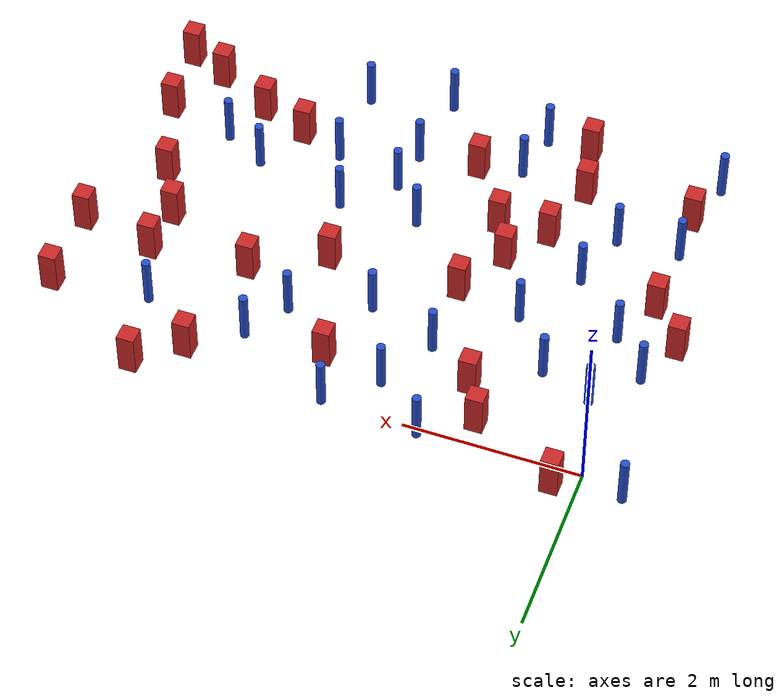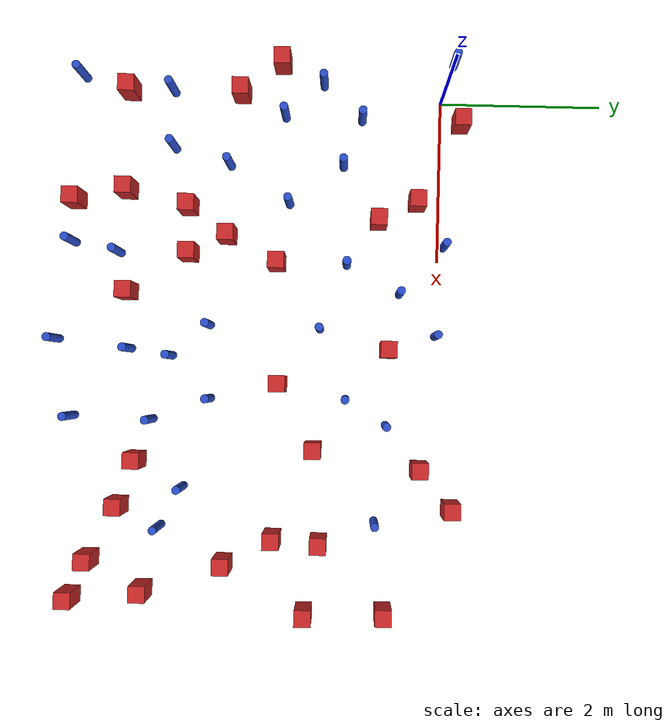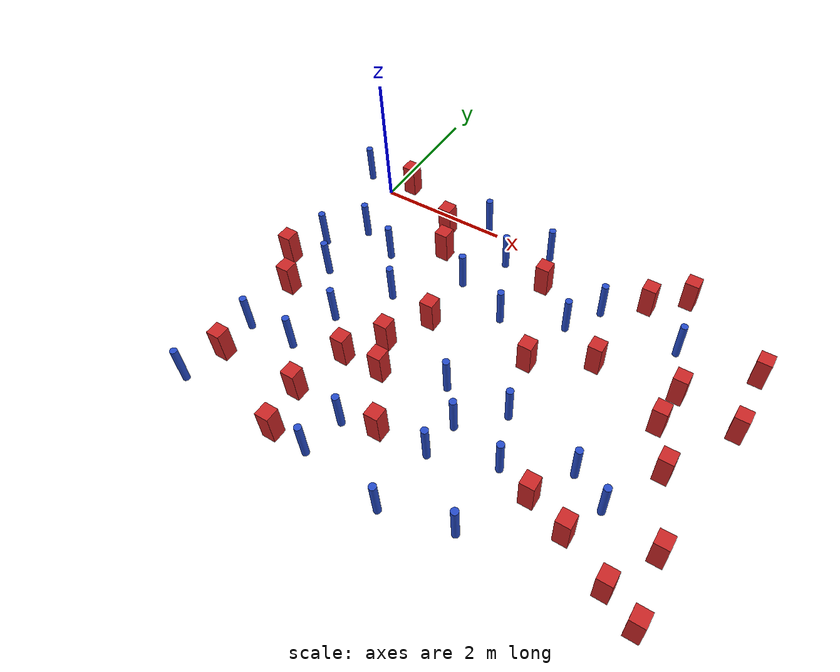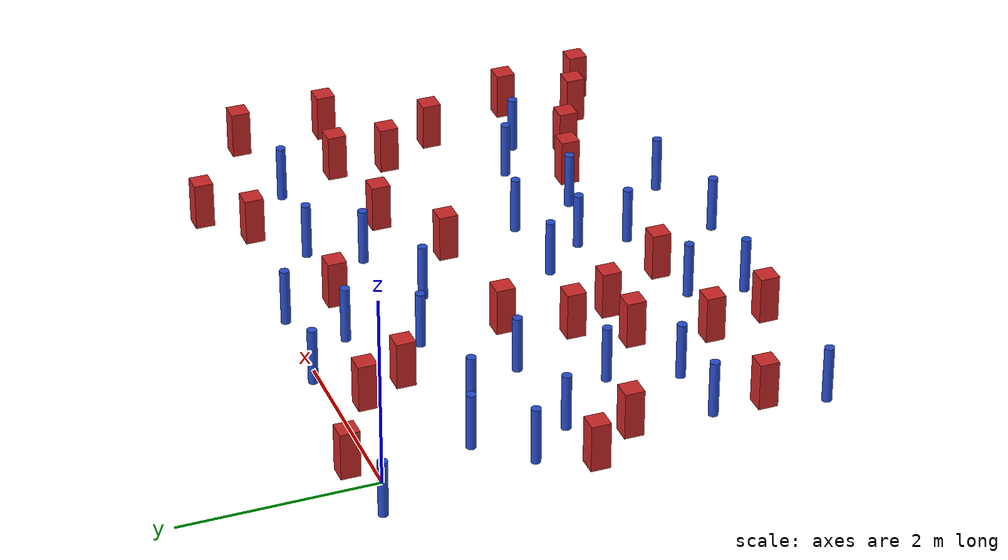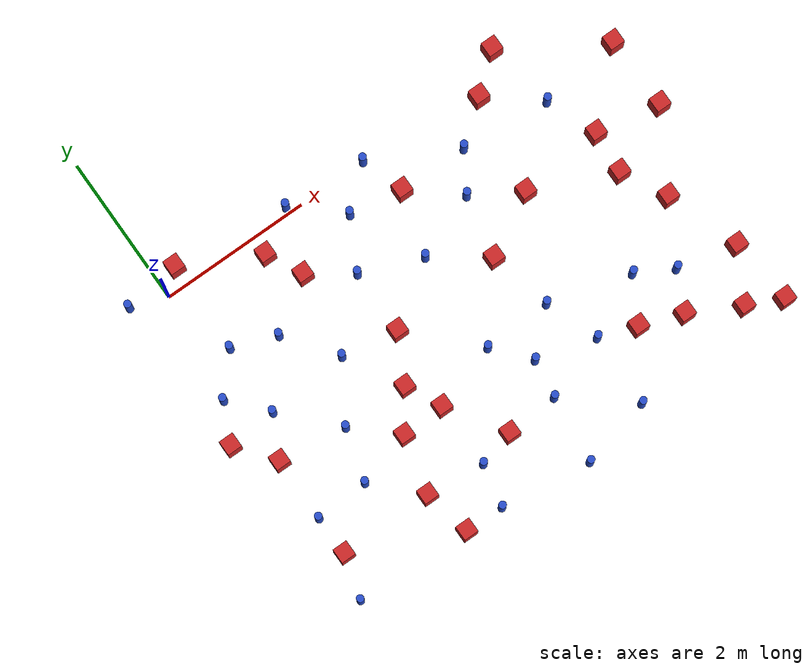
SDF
<sdf version="1.6">
 <model name="dense_52">
  <model name="square_post_obstacle5">
   <static>true</static>
   <pose>5.47471650672 -1.39341901515 8.22691968438e-08 7.2212513382e-06 -7.54495500217e-07 2.29674213826e-05</pose>
   <link name="link">
    <pose>0 0 0.25 0 -0 0</pose>
    <inertial>
     <mass>100</mass>
     <inertia>
      <ixx>0.166667</ixx>
      <ixy>0</ixy>
      <ixz>0</ixz>
      <iyy>0.166667</iyy>
      <iyz>0</iyz>
      <izz>0.166667</izz>
     </inertia>
    </inertial>
    <collision name="collision"><geometry><box><size>.2 .2 .5</size></box></geometry></collision>
    <visual name="visual">
     <geometry><box><size>.2 .2 .5</size></box></geometry>
     <material>
      <script><name>Gazebo/Red</name><uri>file://media/materials/scripts/gazebo.material</uri></script>
     </material>
    </visual>
   </link>
  </model>
  <model name="square_post_obstacle25">
   <static>true</static>
   <pose>6.18317833185 -4.40697033715 8.22691968438e-08 7.22125133819e-06 -7.54495500217e-07 2.29674213826e-05</pose>
   <link name="link">
    <pose>0 0 0.25 0 -0 0</pose>
    <inertial>
     <mass>100</mass>
     <inertia>
      <ixx>0.166667</ixx>
      <ixy>0</ixy>
      <ixz>0</ixz>
      <iyy>0.166667</iyy>
      <iyz>0</iyz>
      <izz>0.166667</izz>
     </inertia>
    </inertial>
    <collision name="collision"><geometry><box><size>.2 .2 .5</size></box></geometry></collision>
    <visual name="visual">
     <geometry><box><size>.2 .2 .5</size></box></geometry>
     <material>
      <script><name>Gazebo/Red</name><uri>file://media/materials/scripts/gazebo.material</uri></script>
     </material>
    </visual>
   </link>
  </model>
  <model name="pole_obstacle20">
   <static>true</static>
   <pose>3.99719522737 -4.45366541195 2.88873142074e-08 -9.90536690327e-09 4.60219948978e-07 -1.20965994969e-07</pose>
   <link name="link">
    <pose>0 0 0.3 0 -0 0</pose>
    <inertial>
     <mass>1</mass>
     <inertia><ixx>0.145833</ixx><ixy>0</ixy><ixz>0</ixz><iyy>0.145833</iyy><iyz>0</iyz><izz>0.125</izz></inertia>
    </inertial>
    <collision name="collision">
     <geometry><cylinder><radius>0.05</radius><length>.6</length></cylinder></geometry>
    </collision>
    <visual name="visual">
     <geometry><cylinder><radius>0.05</radius><length>.6</length></cylinder></geometry>
     <material>
      <script><name>Gazebo/Blue</name><uri>file://media/materials/scripts/gazebo.material</uri></script>
     </material>
    </visual>
   </link>
  </model>
  <model name="square_post_obstacle33">
   <static>true</static>
   <pose>1.38309810057 -3.08793547738 8.22691968438e-08 7.2212513382e-06 -7.54495500217e-07 2.29674213826e-05</pose>
   <link name="link">
    <pose>0 0 0.25 0 -0 0</pose>
    <inertial>
     <mass>100</mass>
     <inertia>
      <ixx>0.166667</ixx>
      <ixy>0</ixy>
      <ixz>0</ixz>
      <iyy>0.166667</iyy>
      <iyz>0</iyz>
      <izz>0.166667</izz>
     </inertia>
    </inertial>
    <collision name="collision"><geometry><box><size>.2 .2 .5</size></box></geometry></collision>
    <visual name="visual">
     <geometry><box><size>.2 .2 .5</size></box></geometry>
     <material>
      <script><name>Gazebo/Red</name><uri>file://media/materials/scripts/gazebo.material</uri></script>
     </material>
    </visual>
   </link>
  </model>
  <model name="square_post_obstacle34">
   <static>true</static>
   <pose>3.10798686411 -0.59308284486 8.22691968438e-08 7.2212513382e-06 -7.54495500217e-07 2.29674213826e-05</pose>
   <link name="link">
    <pose>0 0 0.25 0 -0 0</pose>
    <inertial>
     <mass>100</mass>
     <inertia>
      <ixx>0.166667</ixx>
      <ixy>0</ixy>
      <ixz>0</ixz>
      <iyy>0.166667</iyy>
      <iyz>0</iyz>
      <izz>0.166667</izz>
     </inertia>
    </inertial>
    <collision name="collision"><geometry><box><size>.2 .2 .5</size></box></geometry></collision>
    <visual name="visual">
     <geometry><box><size>.2 .2 .5</size></box></geometry>
     <material>
      <script><name>Gazebo/Red</name><uri>file://media/materials/scripts/gazebo.material</uri></script>
     </material>
    </visual>
   </link>
  </model>
  <model name="pole_obstacle32">
   <static>true</static>
   <pose>3.23208982439 -3.25956717688 2.88873142074e-08 -9.90536690232e-09 4.6021994898e-07 -1.20965994968e-07</pose>
   <link name="link">
    <pose>0 0 0.3 0 -0 0</pose>
    <inertial>
     <mass>1</mass>
     <inertia><ixx>0.145833</ixx><ixy>0</ixy><ixz>0</ixz><iyy>0.145833</iyy><iyz>0</iyz><izz>0.125</izz></inertia>
    </inertial>
    <collision name="collision">
     <geometry><cylinder><radius>0.05</radius><length>.6</length></cylinder></geometry>
    </collision>
    <visual name="visual">
     <geometry><cylinder><radius>0.05</radius><length>.6</length></cylinder></geometry>
     <material>
      <script><name>Gazebo/Blue</name><uri>file://media/materials/scripts/gazebo.material</uri></script>
     </material>
    </visual>
   </link>
  </model>
  <model name="pole_obstacle37">
   <static>true</static>
   <pose>5.31489590078 -3.34119083142 2.88873142074e-08 -9.90536690245e-09 4.6021994898e-07 -1.20965994966e-07</pose>
   <link name="link">
    <pose>0 0 0.3 0 -0 0</pose>
    <inertial>
     <mass>1</mass>
     <inertia><ixx>0.145833</ixx><ixy>0</ixy><ixz>0</ixz><iyy>0.145833</iyy><iyz>0</iyz><izz>0.125</izz></inertia>
    </inertial>
    <collision name="collision">
     <geometry><cylinder><radius>0.05</radius><length>.6</length></cylinder></geometry>
    </collision>
    <visual name="visual">
     <geometry><cylinder><radius>0.05</radius><length>.6</length></cylinder></geometry>
     <material>
      <script><name>Gazebo/Blue</name><uri>file://media/materials/scripts/gazebo.material</uri></script>
     </material>
    </visual>
   </link>
  </model>
  <model name="pole_obstacle39">
   <static>true</static>
   <pose>3.05622703414 -4.67441624264 2.88873142074e-08 -9.90536689859e-09 4.60219948989e-07 -1.20965994961e-07</pose>
   <link name="link">
    <pose>0 0 0.3 0 -0 0</pose>
    <inertial>
     <mass>1</mass>
     <inertia><ixx>0.145833</ixx><ixy>0</ixy><ixz>0</ixz><iyy>0.145833</iyy><iyz>0</iyz><izz>0.125</izz></inertia>
    </inertial>
    <collision name="collision">
     <geometry><cylinder><radius>0.05</radius><length>.6</length></cylinder></geometry>
    </collision>
    <visual name="visual">
     <geometry><cylinder><radius>0.05</radius><length>.6</length></cylinder></geometry>
     <material>
      <script><name>Gazebo/Blue</name><uri>file://media/materials/scripts/gazebo.material</uri></script>
     </material>
    </visual>
   </link>
  </model>
  <model name="square_post_obstacle40">
   <static>true</static>
   <pose>0.27143165079 0.245713718609 8.22691968438e-08 7.2212513382e-06 -7.54495500217e-07 2.29674213826e-05</pose>
   <link name="link">
    <pose>0 0 0.25 0 -0 0</pose>
    <inertial>
     <mass>100</mass>
     <inertia>
      <ixx>0.166667</ixx>
      <ixy>0</ixy>
      <ixz>0</ixz>
      <iyy>0.166667</iyy>
      <iyz>0</iyz>
      <izz>0.166667</izz>
     </inertia>
    </inertial>
    <collision name="collision"><geometry><box><size>.2 .2 .5</size></box></geometry></collision>
    <visual name="visual">
     <geometry><box><size>.2 .2 .5</size></box></geometry>
     <material>
      <script><name>Gazebo/Red</name><uri>file://media/materials/scripts/gazebo.material</uri></script>
     </material>
    </visual>
   </link>
  </model>
  <model name="pole_obstacle45">
   <static>true</static>
   <pose>1.85048243267 -4.50542198533 2.88873142074e-08 -9.90536689852e-09 4.60219948989e-07 -1.2096599496e-07</pose>
   <link name="link">
    <pose>0 0 0.3 0 -0 0</pose>
    <inertial>
     <mass>1</mass>
     <inertia><ixx>0.145833</ixx><ixy>0</ixy><ixz>0</ixz><iyy>0.145833</iyy><iyz>0</iyz><izz>0.125</izz></inertia>
    </inertial>
    <collision name="collision">
     <geometry><cylinder><radius>0.05</radius><length>.6</length></cylinder></geometry>
    </collision>
    <visual name="visual">
     <geometry><cylinder><radius>0.05</radius><length>.6</length></cylinder></geometry>
     <material>
      <script><name>Gazebo/Blue</name><uri>file://media/materials/scripts/gazebo.material</uri></script>
     </material>
    </visual>
   </link>
  </model>
  <model name="pole_obstacle46">
   <static>true</static>
   <pose>4.03366678847 -0.60470468191 2.88873142074e-08 -9.90536689398e-09 4.60219949e-07 -1.20965994956e-07</pose>
   <link name="link">
    <pose>0 0 0.3 0 -0 0</pose>
    <inertial>
     <mass>1</mass>
     <inertia><ixx>0.145833</ixx><ixy>0</ixy><ixz>0</ixz><iyy>0.145833</iyy><iyz>0</iyz><izz>0.125</izz></inertia>
    </inertial>
    <collision name="collision">
     <geometry><cylinder><radius>0.05</radius><length>.6</length></cylinder></geometry>
    </collision>
    <visual name="visual">
     <geometry><cylinder><radius>0.05</radius><length>.6</length></cylinder></geometry>
     <material>
      <script><name>Gazebo/Blue</name><uri>file://media/materials/scripts/gazebo.material</uri></script>
     </material>
    </visual>
   </link>
  </model>
  <model name="pole_obstacle59">
   <static>true</static>
   <pose>2.92207473677 -0.0161002207971 2.88873142074e-08 -9.90536689355e-09 4.60219949001e-07 -1.20965994954e-07</pose>
   <link name="link">
    <pose>0 0 0.3 0 -0 0</pose>
    <inertial>
     <mass>1</mass>
     <inertia><ixx>0.145833</ixx><ixy>0</ixy><ixz>0</ixz><iyy>0.145833</iyy><iyz>0</iyz><izz>0.125</izz></inertia>
    </inertial>
    <collision name="collision">
     <geometry><cylinder><radius>0.05</radius><length>.6</length></cylinder></geometry>
    </collision>
    <visual name="visual">
     <geometry><cylinder><radius>0.05</radius><length>.6</length></cylinder></geometry>
     <material>
      <script><name>Gazebo/Blue</name><uri>file://media/materials/scripts/gazebo.material</uri></script>
     </material>
    </visual>
   </link>
  </model>
  <model name="pole_obstacle66">
   <static>true</static>
   <pose>5.2132037423 -0.721027584315 2.88873142074e-08 -9.90536689837e-09 4.60219948989e-07 -1.2096599496e-07</pose>
   <link name="link">
    <pose>0 0 0.3 0 -0 0</pose>
    <inertial>
     <mass>1</mass>
     <inertia><ixx>0.145833</ixx><ixy>0</ixy><ixz>0</ixz><iyy>0.145833</iyy><iyz>0</iyz><izz>0.125</izz></inertia>
    </inertial>
    <collision name="collision">
     <geometry><cylinder><radius>0.05</radius><length>.6</length></cylinder></geometry>
    </collision>
    <visual name="visual">
     <geometry><cylinder><radius>0.05</radius><length>.6</length></cylinder></geometry>
     <material>
      <script><name>Gazebo/Blue</name><uri>file://media/materials/scripts/gazebo.material</uri></script>
     </material>
    </visual>
   </link>
  </model>
  <model name="square_post_obstacle69">
   <static>true</static>
   <pose>-0.0511654074525 -2.46885445732 8.22691968438e-08 7.2212513382e-06 -7.54495500217e-07 2.29674213826e-05</pose>
   <link name="link">
    <pose>0 0 0.25 0 -0 0</pose>
    <inertial>
     <mass>100</mass>
     <inertia>
      <ixx>0.166667</ixx>
      <ixy>0</ixy>
      <ixz>0</ixz>
      <iyy>0.166667</iyy>
      <iyz>0</iyz>
      <izz>0.166667</izz>
     </inertia>
    </inertial>
    <collision name="collision"><geometry><box><size>.2 .2 .5</size></box></geometry></collision>
    <visual name="visual">
     <geometry><box><size>.2 .2 .5</size></box></geometry>
     <material>
      <script><name>Gazebo/Red</name><uri>file://media/materials/scripts/gazebo.material</uri></script>
     </material>
    </visual>
   </link>
  </model>
  <model name="square_post_obstacle72">
   <static>true</static>
   <pose>5.72340091215 -4.19345197059 8.22691968438e-08 7.2212513382e-06 -7.54495500217e-07 2.29674213826e-05</pose>
   <link name="link">
    <pose>0 0 0.25 0 -0 0</pose>
    <inertial>
     <mass>100</mass>
     <inertia>
      <ixx>0.166667</ixx>
      <ixy>0</ixy>
      <ixz>0</ixz>
      <iyy>0.166667</iyy>
      <iyz>0</iyz>
      <izz>0.166667</izz>
     </inertia>
    </inertial>
    <collision name="collision"><geometry><box><size>.2 .2 .5</size></box></geometry></collision>
    <visual name="visual">
     <geometry><box><size>.2 .2 .5</size></box></geometry>
     <material>
      <script><name>Gazebo/Red</name><uri>file://media/materials/scripts/gazebo.material</uri></script>
     </material>
    </visual>
   </link>
  </model>
  <model name="pole_obstacle88">
   <static>true</static>
   <pose>0.648081252535 -3.28849379341 2.88873142074e-08 -9.90536689636e-09 4.60219948994e-07 -1.20965994958e-07</pose>
   <link name="link">
    <pose>0 0 0.3 0 -0 0</pose>
    <inertial>
     <mass>1</mass>
     <inertia><ixx>0.145833</ixx><ixy>0</ixy><ixz>0</ixz><iyy>0.145833</iyy><iyz>0</iyz><izz>0.125</izz></inertia>
    </inertial>
    <collision name="collision">
     <geometry><cylinder><radius>0.05</radius><length>.6</length></cylinder></geometry>
    </collision>
    <visual name="visual">
     <geometry><cylinder><radius>0.05</radius><length>.6</length></cylinder></geometry>
     <material>
      <script><name>Gazebo/Blue</name><uri>file://media/materials/scripts/gazebo.material</uri></script>
     </material>
    </visual>
   </link>
  </model>
  <model name="pole_obstacle89">
   <static>true</static>
   <pose>1.31473457447 -1.85137507833 2.88873142074e-08 -9.90536689672e-09 4.60219948993e-07 -1.20965994959e-07</pose>
   <link name="link">
    <pose>0 0 0.3 0 -0 0</pose>
    <inertial>
     <mass>1</mass>
     <inertia><ixx>0.145833</ixx><ixy>0</ixy><ixz>0</ixz><iyy>0.145833</iyy><iyz>0</iyz><izz>0.125</izz></inertia>
    </inertial>
    <collision name="collision">
     <geometry><cylinder><radius>0.05</radius><length>.6</length></cylinder></geometry>
    </collision>
    <visual name="visual">
     <geometry><cylinder><radius>0.05</radius><length>.6</length></cylinder></geometry>
     <material>
      <script><name>Gazebo/Blue</name><uri>file://media/materials/scripts/gazebo.material</uri></script>
     </material>
    </visual>
   </link>
  </model>
  <model name="pole_obstacle94">
   <static>true</static>
   <pose>3.72324024829 -1.10595730925 2.88873142074e-08 -9.90536689395e-09 4.60219949e-07 -1.20965994953e-07</pose>
   <link name="link">
    <pose>0 0 0.3 0 -0 0</pose>
    <inertial>
     <mass>1</mass>
     <inertia><ixx>0.145833</ixx><ixy>0</ixy><ixz>0</ixz><iyy>0.145833</iyy><iyz>0</iyz><izz>0.125</izz></inertia>
    </inertial>
    <collision name="collision">
     <geometry><cylinder><radius>0.05</radius><length>.6</length></cylinder></geometry>
    </collision>
    <visual name="visual">
     <geometry><cylinder><radius>0.05</radius><length>.6</length></cylinder></geometry>
     <material>
      <script><name>Gazebo/Blue</name><uri>file://media/materials/scripts/gazebo.material</uri></script>
     </material>
    </visual>
   </link>
  </model>
  <model name="pole_obstacle102">
   <static>true</static>
   <pose>2.40864202936 -0.466792761881 2.88873142074e-08 -9.90536689634e-09 4.60219948994e-07 -1.20965994958e-07</pose>
   <link name="link">
    <pose>0 0 0.3 0 -0 0</pose>
    <inertial>
     <mass>1</mass>
     <inertia><ixx>0.145833</ixx><ixy>0</ixy><ixz>0</ixz><iyy>0.145833</iyy><iyz>0</iyz><izz>0.125</izz></inertia>
    </inertial>
    <collision name="collision">
     <geometry><cylinder><radius>0.05</radius><length>.6</length></cylinder></geometry>
    </collision>
    <visual name="visual">
     <geometry><cylinder><radius>0.05</radius><length>.6</length></cylinder></geometry>
     <material>
      <script><name>Gazebo/Blue</name><uri>file://media/materials/scripts/gazebo.material</uri></script>
     </material>
    </visual>
   </link>
  </model>
  <model name="pole_obstacle103">
   <static>true</static>
   <pose>-0.22448012162 -4.43620303594 2.88873142074e-08 -9.90536689703e-09 4.60219948992e-07 -1.20965994959e-07</pose>
   <link name="link">
    <pose>0 0 0.3 0 -0 0</pose>
    <inertial>
     <mass>1</mass>
     <inertia><ixx>0.145833</ixx><ixy>0</ixy><ixz>0</ixz><iyy>0.145833</iyy><iyz>0</iyz><izz>0.125</izz></inertia>
    </inertial>
    <collision name="collision">
     <geometry><cylinder><radius>0.05</radius><length>.6</length></cylinder></geometry>
    </collision>
    <visual name="visual">
     <geometry><cylinder><radius>0.05</radius><length>.6</length></cylinder></geometry>
     <material>
      <script><name>Gazebo/Blue</name><uri>file://media/materials/scripts/gazebo.material</uri></script>
     </material>
    </visual>
   </link>
  </model>
  <model name="pole_obstacle104">
   <static>true</static>
   <pose>0.222646440576 -1.92469986445 2.88873142074e-08 -9.90536690118e-09 4.60219948983e-07 -1.20965994965e-07</pose>
   <link name="link">
    <pose>0 0 0.3 0 -0 0</pose>
    <inertial>
     <mass>1</mass>
     <inertia><ixx>0.145833</ixx><ixy>0</ixy><ixz>0</ixz><iyy>0.145833</iyy><iyz>0</iyz><izz>0.125</izz></inertia>
    </inertial>
    <collision name="collision">
     <geometry><cylinder><radius>0.05</radius><length>.6</length></cylinder></geometry>
    </collision>
    <visual name="visual">
     <geometry><cylinder><radius>0.05</radius><length>.6</length></cylinder></geometry>
     <material>
      <script><name>Gazebo/Blue</name><uri>file://media/materials/scripts/gazebo.material</uri></script>
     </material>
    </visual>
   </link>
  </model>
  <model name="square_post_obstacle95">
   <static>true</static>
   <pose>-0.055517162418 -3.85417466073 8.22691968438e-08 7.2212513382e-06 -7.54495500217e-07 2.29674213826e-05</pose>
   <link name="link">
    <pose>0 0 0.25 0 -0 0</pose>
    <inertial>
     <mass>100</mass>
     <inertia>
      <ixx>0.166667</ixx>
      <ixy>0</ixy>
      <ixz>0</ixz>
      <iyy>0.166667</iyy>
      <iyz>0</iyz>
      <izz>0.166667</izz>
     </inertia>
    </inertial>
    <collision name="collision"><geometry><box><size>.2 .2 .5</size></box></geometry></collision>
    <visual name="visual">
     <geometry><box><size>.2 .2 .5</size></box></geometry>
     <material>
      <script><name>Gazebo/Red</name><uri>file://media/materials/scripts/gazebo.material</uri></script>
     </material>
    </visual>
   </link>
  </model>
  <model name="pole_obstacle108">
   <static>true</static>
   <pose>-0.0636278913677 -3.31950558026 2.88873142074e-08 -9.90536689778e-09 4.60219948991e-07 -1.20965994959e-07</pose>
   <link name="link">
    <pose>0 0 0.3 0 -0 0</pose>
    <inertial>
     <mass>1</mass>
     <inertia><ixx>0.145833</ixx><ixy>0</ixy><ixz>0</ixz><iyy>0.145833</iyy><iyz>0</iyz><izz>0.125</izz></inertia>
    </inertial>
    <collision name="collision">
     <geometry><cylinder><radius>0.05</radius><length>.6</length></cylinder></geometry>
    </collision>
    <visual name="visual">
     <geometry><cylinder><radius>0.05</radius><length>.6</length></cylinder></geometry>
     <material>
      <script><name>Gazebo/Blue</name><uri>file://media/materials/scripts/gazebo.material</uri></script>
     </material>
    </visual>
   </link>
  </model>
  <model name="pole_obstacle110">
   <static>true</static>
   <pose>0.245453239597 -0.973071662758 2.88873142074e-08 -9.90536689948e-09 4.60219948986e-07 -1.20965994962e-07</pose>
   <link name="link">
    <pose>0 0 0.3 0 -0 0</pose>
    <inertial>
     <mass>1</mass>
     <inertia><ixx>0.145833</ixx><ixy>0</ixy><ixz>0</ixz><iyy>0.145833</iyy><iyz>0</iyz><izz>0.125</izz></inertia>
    </inertial>
    <collision name="collision">
     <geometry><cylinder><radius>0.05</radius><length>.6</length></cylinder></geometry>
    </collision>
    <visual name="visual">
     <geometry><cylinder><radius>0.05</radius><length>.6</length></cylinder></geometry>
     <material>
      <script><name>Gazebo/Blue</name><uri>file://media/materials/scripts/gazebo.material</uri></script>
     </material>
    </visual>
   </link>
  </model>
  <model name="pole_obstacle112">
   <static>true</static>
   <pose>2.86412638105 -1.43719556574 2.88873142074e-08 -9.90536689395e-09 4.60219949e-07 -1.20965994953e-07</pose>
   <link name="link">
    <pose>0 0 0.3 0 -0 0</pose>
    <inertial>
     <mass>1</mass>
     <inertia><ixx>0.145833</ixx><ixy>0</ixy><ixz>0</ixz><iyy>0.145833</iyy><iyz>0</iyz><izz>0.125</izz></inertia>
    </inertial>
    <collision name="collision">
     <geometry><cylinder><radius>0.05</radius><length>.6</length></cylinder></geometry>
    </collision>
    <visual name="visual">
     <geometry><cylinder><radius>0.05</radius><length>.6</length></cylinder></geometry>
     <material>
      <script><name>Gazebo/Blue</name><uri>file://media/materials/scripts/gazebo.material</uri></script>
     </material>
    </visual>
   </link>
  </model>
  <model name="pole_obstacle119">
   <static>true</static>
   <pose>3.15659651203 -3.7718616717 2.88873142074e-08 -9.90536690232e-09 4.6021994898e-07 -1.20965994968e-07</pose>
   <link name="link">
    <pose>0 0 0.3 0 -0 0</pose>
    <inertial>
     <mass>1</mass>
     <inertia><ixx>0.145833</ixx><ixy>0</ixy><ixz>0</ixz><iyy>0.145833</iyy><iyz>0</iyz><izz>0.125</izz></inertia>
    </inertial>
    <collision name="collision">
     <geometry><cylinder><radius>0.05</radius><length>.6</length></cylinder></geometry>
    </collision>
    <visual name="visual">
     <geometry><cylinder><radius>0.05</radius><length>.6</length></cylinder></geometry>
     <material>
      <script><name>Gazebo/Blue</name><uri>file://media/materials/scripts/gazebo.material</uri></script>
     </material>
    </visual>
   </link>
  </model>
  <model name="pole_obstacle126">
   <static>true</static>
   <pose>4.83457943428 -3.07667516422 2.88873142074e-08 -9.90536690245e-09 4.6021994898e-07 -1.20965994966e-07</pose>
   <link name="link">
    <pose>0 0 0.3 0 -0 0</pose>
    <inertial>
     <mass>1</mass>
     <inertia><ixx>0.145833</ixx><ixy>0</ixy><ixz>0</ixz><iyy>0.145833</iyy><iyz>0</iyz><izz>0.125</izz></inertia>
    </inertial>
    <collision name="collision">
     <geometry><cylinder><radius>0.05</radius><length>.6</length></cylinder></geometry>
    </collision>
    <visual name="visual">
     <geometry><cylinder><radius>0.05</radius><length>.6</length></cylinder></geometry>
     <material>
      <script><name>Gazebo/Blue</name><uri>file://media/materials/scripts/gazebo.material</uri></script>
     </material>
    </visual>
   </link>
  </model>
  <model name="pole_obstacle128">
   <static>true</static>
   <pose>-0.478040595308 0.156750851464 2.88873142074e-08 -9.90536690111e-09 4.60219948983e-07 -1.20965994964e-07</pose>
   <link name="link">
    <pose>0 0 0.3 0 -0 0</pose>
    <inertial>
     <mass>1</mass>
     <inertia><ixx>0.145833</ixx><ixy>0</ixy><ixz>0</ixz><iyy>0.145833</iyy><iyz>0</iyz><izz>0.125</izz></inertia>
    </inertial>
    <collision name="collision">
     <geometry><cylinder><radius>0.05</radius><length>.6</length></cylinder></geometry>
    </collision>
    <visual name="visual">
     <geometry><cylinder><radius>0.05</radius><length>.6</length></cylinder></geometry>
     <material>
      <script><name>Gazebo/Blue</name><uri>file://media/materials/scripts/gazebo.material</uri></script>
     </material>
    </visual>
   </link>
  </model>
  <model name="square_post_obstacle118">
   <static>true</static>
   <pose>4.51066244737 -3.64841370875 8.22691968438e-08 7.2212513382e-06 -7.54495500217e-07 2.29674213826e-05</pose>
   <link name="link">
    <pose>0 0 0.25 0 -0 0</pose>
    <inertial>
     <mass>100</mass>
     <inertia>
      <ixx>0.166667</ixx>
      <ixy>0</ixy>
      <ixz>0</ixz>
      <iyy>0.166667</iyy>
      <iyz>0</iyz>
      <izz>0.166667</izz>
     </inertia>
    </inertial>
    <collision name="collision"><geometry><box><size>.2 .2 .5</size></box></geometry></collision>
    <visual name="visual">
     <geometry><box><size>.2 .2 .5</size></box></geometry>
     <material>
      <script><name>Gazebo/Red</name><uri>file://media/materials/scripts/gazebo.material</uri></script>
     </material>
    </visual>
   </link>
  </model>
  <model name="pole_obstacle142">
   <static>true</static>
   <pose>3.74936654003 -2.77045445652 2.88873142074e-08 -9.90536690232e-09 4.6021994898e-07 -1.20965994968e-07</pose>
   <link name="link">
    <pose>0 0 0.3 0 -0 0</pose>
    <inertial>
     <mass>1</mass>
     <inertia><ixx>0.145833</ixx><ixy>0</ixy><ixz>0</ixz><iyy>0.145833</iyy><iyz>0</iyz><izz>0.125</izz></inertia>
    </inertial>
    <collision name="collision">
     <geometry><cylinder><radius>0.05</radius><length>.6</length></cylinder></geometry>
    </collision>
    <visual name="visual">
     <geometry><cylinder><radius>0.05</radius><length>.6</length></cylinder></geometry>
     <material>
      <script><name>Gazebo/Blue</name><uri>file://media/materials/scripts/gazebo.material</uri></script>
     </material>
    </visual>
   </link>
  </model>
  <model name="square_post_obstacle133">
   <static>true</static>
   <pose>1.19195181166 -3.85275905555 8.22691968438e-08 7.2212513382e-06 -7.54495500217e-07 2.29674213826e-05</pose>
   <link name="link">
    <pose>0 0 0.25 0 -0 0</pose>
    <inertial>
     <mass>100</mass>
     <inertia>
      <ixx>0.166667</ixx>
      <ixy>0</ixy>
      <ixz>0</ixz>
      <iyy>0.166667</iyy>
      <iyz>0</iyz>
      <izz>0.166667</izz>
     </inertia>
    </inertial>
    <collision name="collision"><geometry><box><size>.2 .2 .5</size></box></geometry></collision>
    <visual name="visual">
     <geometry><box><size>.2 .2 .5</size></box></geometry>
     <material>
      <script><name>Gazebo/Red</name><uri>file://media/materials/scripts/gazebo.material</uri></script>
     </material>
    </visual>
   </link>
  </model>
  <model name="square_post_obstacle134">
   <static>true</static>
   <pose>1.32915672135 -4.48997836216 8.22691968438e-08 7.2212513382e-06 -7.54495500217e-07 2.29674213826e-05</pose>
   <link name="link">
    <pose>0 0 0.25 0 -0 0</pose>
    <inertial>
     <mass>100</mass>
     <inertia>
      <ixx>0.166667</ixx>
      <ixy>0</ixy>
      <ixz>0</ixz>
      <iyy>0.166667</iyy>
      <iyz>0</iyz>
      <izz>0.166667</izz>
     </inertia>
    </inertial>
    <collision name="collision"><geometry><box><size>.2 .2 .5</size></box></geometry></collision>
    <visual name="visual">
     <geometry><box><size>.2 .2 .5</size></box></geometry>
     <material>
      <script><name>Gazebo/Red</name><uri>file://media/materials/scripts/gazebo.material</uri></script>
     </material>
    </visual>
   </link>
  </model>
  <model name="pole_obstacle153">
   <static>true</static>
   <pose>0.848655915704 -2.5945527872 2.88873142074e-08 -9.90536689636e-09 4.60219948994e-07 -1.20965994958e-07</pose>
   <link name="link">
    <pose>0 0 0.3 0 -0 0</pose>
    <inertial>
     <mass>1</mass>
     <inertia><ixx>0.145833</ixx><ixy>0</ixy><ixz>0</ixz><iyy>0.145833</iyy><iyz>0</iyz><izz>0.125</izz></inertia>
    </inertial>
    <collision name="collision">
     <geometry><cylinder><radius>0.05</radius><length>.6</length></cylinder></geometry>
    </collision>
    <visual name="visual">
     <geometry><cylinder><radius>0.05</radius><length>.6</length></cylinder></geometry>
     <material>
      <script><name>Gazebo/Blue</name><uri>file://media/materials/scripts/gazebo.material</uri></script>
     </material>
    </visual>
   </link>
  </model>
  <model name="square_post_obstacle145">
   <static>true</static>
   <pose>6.08742589796 -3.52667765731 8.22691968438e-08 7.2212513382e-06 -7.54495500217e-07 2.29674213826e-05</pose>
   <link name="link">
    <pose>0 0 0.25 0 -0 0</pose>
    <inertial>
     <mass>100</mass>
     <inertia>
      <ixx>0.166667</ixx>
      <ixy>0</ixy>
      <ixz>0</ixz>
      <iyy>0.166667</iyy>
      <iyz>0</iyz>
      <izz>0.166667</izz>
     </inertia>
    </inertial>
    <collision name="collision"><geometry><box><size>.2 .2 .5</size></box></geometry></collision>
    <visual name="visual">
     <geometry><box><size>.2 .2 .5</size></box></geometry>
     <material>
      <script><name>Gazebo/Red</name><uri>file://media/materials/scripts/gazebo.material</uri></script>
     </material>
    </visual>
   </link>
  </model>
  <model name="square_post_obstacle148">
   <static>true</static>
   <pose>3.55038360704 -1.93244834086 8.22691968438e-08 7.22125133819e-06 -7.54495500217e-07 2.29674213826e-05</pose>
   <link name="link">
    <pose>0 0 0.25 0 -0 0</pose>
    <inertial>
     <mass>100</mass>
     <inertia>
      <ixx>0.166667</ixx>
      <ixy>0</ixy>
      <ixz>0</ixz>
      <iyy>0.166667</iyy>
      <iyz>0</iyz>
      <izz>0.166667</izz>
     </inertia>
    </inertial>
    <collision name="collision"><geometry><box><size>.2 .2 .5</size></box></geometry></collision>
    <visual name="visual">
     <geometry><box><size>.2 .2 .5</size></box></geometry>
     <material>
      <script><name>Gazebo/Red</name><uri>file://media/materials/scripts/gazebo.material</uri></script>
     </material>
    </visual>
   </link>
  </model>
  <model name="square_post_obstacle149">
   <static>true</static>
   <pose>6.29930057717 -0.593651646372 8.22691968438e-08 7.2212513382e-06 -7.54495500217e-07 2.29674213826e-05</pose>
   <link name="link">
    <pose>0 0 0.25 0 -0 0</pose>
    <inertial>
     <mass>100</mass>
     <inertia>
      <ixx>0.166667</ixx>
      <ixy>0</ixy>
      <ixz>0</ixz>
      <iyy>0.166667</iyy>
      <iyz>0</iyz>
      <izz>0.166667</izz>
     </inertia>
    </inertial>
    <collision name="collision"><geometry><box><size>.2 .2 .5</size></box></geometry></collision>
    <visual name="visual">
     <geometry><box><size>.2 .2 .5</size></box></geometry>
     <material>
      <script><name>Gazebo/Red</name><uri>file://media/materials/scripts/gazebo.material</uri></script>
     </material>
    </visual>
   </link>
  </model>
  <model name="square_post_obstacle153">
   <static>true</static>
   <pose>5.0288920942 0.202066430515 8.22691968438e-08 7.2212513382e-06 -7.54495500217e-07 2.29674213826e-05</pose>
   <link name="link">
    <pose>0 0 0.25 0 -0 0</pose>
    <inertial>
     <mass>100</mass>
     <inertia>
      <ixx>0.166667</ixx>
      <ixy>0</ixy>
      <ixz>0</ixz>
      <iyy>0.166667</iyy>
      <iyz>0</iyz>
      <izz>0.166667</izz>
     </inertia>
    </inertial>
    <collision name="collision"><geometry><box><size>.2 .2 .5</size></box></geometry></collision>
    <visual name="visual">
     <geometry><box><size>.2 .2 .5</size></box></geometry>
     <material>
      <script><name>Gazebo/Red</name><uri>file://media/materials/scripts/gazebo.material</uri></script>
     </material>
    </visual>
   </link>
  </model>
  <model name="square_post_obstacle164">
   <static>true</static>
   <pose>1.27169492152 -0.275767882336 8.22691968438e-08 7.22125133819e-06 -7.54495500217e-07 2.29674213826e-05</pose>
   <link name="link">
    <pose>0 0 0.25 0 -0 0</pose>
    <inertial>
     <mass>100</mass>
     <inertia>
      <ixx>0.166667</ixx>
      <ixy>0</ixy>
      <ixz>0</ixz>
      <iyy>0.166667</iyy>
      <iyz>0</iyz>
      <izz>0.166667</izz>
     </inertia>
    </inertial>
    <collision name="collision"><geometry><box><size>.2 .2 .5</size></box></geometry></collision>
    <visual name="visual">
     <geometry><box><size>.2 .2 .5</size></box></geometry>
     <material>
      <script><name>Gazebo/Red</name><uri>file://media/materials/scripts/gazebo.material</uri></script>
     </material>
    </visual>
   </link>
  </model>
  <model name="pole_obstacle176">
   <static>true</static>
   <pose>4.01826266544 -3.47602512839 2.88873142074e-08 -9.90536689988e-09 4.60219948986e-07 -1.20965994963e-07</pose>
   <link name="link">
    <pose>0 0 0.3 0 -0 0</pose>
    <inertial>
     <mass>1</mass>
     <inertia><ixx>0.145833</ixx><ixy>0</ixy><ixz>0</ixz><iyy>0.145833</iyy><iyz>0</iyz><izz>0.125</izz></inertia>
    </inertial>
    <collision name="collision">
     <geometry><cylinder><radius>0.05</radius><length>.6</length></cylinder></geometry>
    </collision>
    <visual name="visual">
     <geometry><cylinder><radius>0.05</radius><length>.6</length></cylinder></geometry>
     <material>
      <script><name>Gazebo/Blue</name><uri>file://media/materials/scripts/gazebo.material</uri></script>
     </material>
    </visual>
   </link>
  </model>
  <model name="square_post_obstacle165">
   <static>true</static>
   <pose>6.32326160724 -1.55364122729 8.22691968438e-08 7.2212513382e-06 -7.54495500217e-07 2.29674213826e-05</pose>
   <link name="link">
    <pose>0 0 0.25 0 -0 0</pose>
    <inertial>
     <mass>100</mass>
     <inertia>
      <ixx>0.166667</ixx>
      <ixy>0</ixy>
      <ixz>0</ixz>
      <iyy>0.166667</iyy>
      <iyz>0</iyz>
      <izz>0.166667</izz>
     </inertia>
    </inertial>
    <collision name="collision"><geometry><box><size>.2 .2 .5</size></box></geometry></collision>
    <visual name="visual">
     <geometry><box><size>.2 .2 .5</size></box></geometry>
     <material>
      <script><name>Gazebo/Red</name><uri>file://media/materials/scripts/gazebo.material</uri></script>
     </material>
    </visual>
   </link>
  </model>
  <model name="square_post_obstacle166">
   <static>true</static>
   <pose>1.9644233587 -3.06777496147 8.22691968438e-08 7.2212513382e-06 -7.54495500217e-07 2.29674213826e-05</pose>
   <link name="link">
    <pose>0 0 0.25 0 -0 0</pose>
    <inertial>
     <mass>100</mass>
     <inertia>
      <ixx>0.166667</ixx>
      <ixy>0</ixy>
      <ixz>0</ixz>
      <iyy>0.166667</iyy>
      <iyz>0</iyz>
      <izz>0.166667</izz>
     </inertia>
    </inertial>
    <collision name="collision"><geometry><box><size>.2 .2 .5</size></box></geometry></collision>
    <visual name="visual">
     <geometry><box><size>.2 .2 .5</size></box></geometry>
     <material>
      <script><name>Gazebo/Red</name><uri>file://media/materials/scripts/gazebo.material</uri></script>
     </material>
    </visual>
   </link>
  </model>
  <model name="pole_obstacle184">
   <static>true</static>
   <pose>1.81592988678 0.0672029293715 2.88873142074e-08 -9.90536689717e-09 4.60219948992e-07 -1.20965994959e-07</pose>
   <link name="link">
    <pose>0 0 0.3 0 -0 0</pose>
    <inertial>
     <mass>1</mass>
     <inertia><ixx>0.145833</ixx><ixy>0</ixy><ixz>0</ixz><iyy>0.145833</iyy><iyz>0</iyz><izz>0.125</izz></inertia>
    </inertial>
    <collision name="collision">
     <geometry><cylinder><radius>0.05</radius><length>.6</length></cylinder></geometry>
    </collision>
    <visual name="visual">
     <geometry><cylinder><radius>0.05</radius><length>.6</length></cylinder></geometry>
     <material>
      <script><name>Gazebo/Blue</name><uri>file://media/materials/scripts/gazebo.material</uri></script>
     </material>
    </visual>
   </link>
  </model>
  <model name="square_post_obstacle173">
   <static>true</static>
   <pose>-0.432943265147 -1.97129884132 8.22691968438e-08 7.2212513382e-06 -7.54495500217e-07 2.29674213826e-05</pose>
   <link name="link">
    <pose>0 0 0.25 0 -0 0</pose>
    <inertial>
     <mass>100</mass>
     <inertia>
      <ixx>0.166667</ixx>
      <ixy>0</ixy>
      <ixz>0</ixz>
      <iyy>0.166667</iyy>
      <iyz>0</iyz>
      <izz>0.166667</izz>
     </inertia>
    </inertial>
    <collision name="collision"><geometry><box><size>.2 .2 .5</size></box></geometry></collision>
    <visual name="visual">
     <geometry><box><size>.2 .2 .5</size></box></geometry>
     <material>
      <script><name>Gazebo/Red</name><uri>file://media/materials/scripts/gazebo.material</uri></script>
     </material>
    </visual>
   </link>
  </model>
  <model name="square_post_obstacle176">
   <static>true</static>
   <pose>5.06876502787 -3.85027844527 8.22691968438e-08 7.2212513382e-06 -7.54495500217e-07 2.29674213826e-05</pose>
   <link name="link">
    <pose>0 0 0.25 0 -0 0</pose>
    <inertial>
     <mass>100</mass>
     <inertia>
      <ixx>0.166667</ixx>
      <ixy>0</ixy>
      <ixz>0</ixz>
      <iyy>0.166667</iyy>
      <iyz>0</iyz>
      <izz>0.166667</izz>
     </inertia>
    </inertial>
    <collision name="collision"><geometry><box><size>.2 .2 .5</size></box></geometry></collision>
    <visual name="visual">
     <geometry><box><size>.2 .2 .5</size></box></geometry>
     <material>
      <script><name>Gazebo/Red</name><uri>file://media/materials/scripts/gazebo.material</uri></script>
     </material>
    </visual>
   </link>
  </model>
  <model name="square_post_obstacle183">
   <static>true</static>
   <pose>1.50938933907 -0.745513648568 8.22691968438e-08 7.2212513382e-06 -7.54495500217e-07 2.29674213826e-05</pose>
   <link name="link">
    <pose>0 0 0.25 0 -0 0</pose>
    <inertial>
     <mass>100</mass>
     <inertia>
      <ixx>0.166667</ixx>
      <ixy>0</ixy>
      <ixz>0</ixz>
      <iyy>0.166667</iyy>
      <iyz>0</iyz>
      <izz>0.166667</izz>
     </inertia>
    </inertial>
    <collision name="collision"><geometry><box><size>.2 .2 .5</size></box></geometry></collision>
    <visual name="visual">
     <geometry><box><size>.2 .2 .5</size></box></geometry>
     <material>
      <script><name>Gazebo/Red</name><uri>file://media/materials/scripts/gazebo.material</uri></script>
     </material>
    </visual>
   </link>
  </model>
  <model name="square_post_obstacle188">
   <static>true</static>
   <pose>2.45569189935 -3.81207782526 8.22691968438e-08 7.2212513382e-06 -7.54495500217e-07 2.29674213826e-05</pose>
   <link name="link">
    <pose>0 0 0.25 0 -0 0</pose>
    <inertial>
     <mass>100</mass>
     <inertia>
      <ixx>0.166667</ixx>
      <ixy>0</ixy>
      <ixz>0</ixz>
      <iyy>0.166667</iyy>
      <iyz>0</iyz>
      <izz>0.166667</izz>
     </inertia>
    </inertial>
    <collision name="collision"><geometry><box><size>.2 .2 .5</size></box></geometry></collision>
    <visual name="visual">
     <geometry><box><size>.2 .2 .5</size></box></geometry>
     <material>
      <script><name>Gazebo/Red</name><uri>file://media/materials/scripts/gazebo.material</uri></script>
     </material>
    </visual>
   </link>
  </model>
  <model name="square_post_obstacle196">
   <static>true</static>
   <pose>5.74513138275 -2.54898648247 8.22691968438e-08 7.2212513382e-06 -7.54495500217e-07 2.29674213826e-05</pose>
   <link name="link">
    <pose>0 0 0.25 0 -0 0</pose>
    <inertial>
     <mass>100</mass>
     <inertia>
      <ixx>0.166667</ixx>
      <ixy>0</ixy>
      <ixz>0</ixz>
      <iyy>0.166667</iyy>
      <iyz>0</iyz>
      <izz>0.166667</izz>
     </inertia>
    </inertial>
    <collision name="collision"><geometry><box><size>.2 .2 .5</size></box></geometry></collision>
    <visual name="visual">
     <geometry><box><size>.2 .2 .5</size></box></geometry>
     <material>
      <script><name>Gazebo/Red</name><uri>file://media/materials/scripts/gazebo.material</uri></script>
     </material>
    </visual>
   </link>
  </model>
  <model name="pole_obstacle188">
   <static>true</static>
   <pose>2.06075770377 -1.12374412439 2.88873142074e-08 -9.90536689395e-09 4.60219949e-07 -1.20965994953e-07</pose>
   <link name="link">
    <pose>0 0 0.3 0 -0 0</pose>
    <inertial>
     <mass>1</mass>
     <inertia><ixx>0.145833</ixx><ixy>0</ixy><ixz>0</ixz><iyy>0.145833</iyy><iyz>0</iyz><izz>0.125</izz></inertia>
    </inertial>
    <collision name="collision">
     <geometry><cylinder><radius>0.05</radius><length>.6</length></cylinder></geometry>
    </collision>
    <visual name="visual">
     <geometry><cylinder><radius>0.05</radius><length>.6</length></cylinder></geometry>
     <material>
      <script><name>Gazebo/Blue</name><uri>file://media/materials/scripts/gazebo.material</uri></script>
     </material>
    </visual>
   </link>
  </model>
  <model name="pole_obstacle191">
   <static>true</static>
   <pose>1.97079499008 -3.93820346569 2.88873142074e-08 -9.90536689941e-09 4.60219948987e-07 -1.20965994961e-07</pose>
   <link name="link">
    <pose>0 0 0.3 0 -0 0</pose>
    <inertial>
     <mass>1</mass>
     <inertia><ixx>0.145833</ixx><ixy>0</ixy><ixz>0</ixz><iyy>0.145833</iyy><iyz>0</iyz><izz>0.125</izz></inertia>
    </inertial>
    <collision name="collision">
     <geometry><cylinder><radius>0.05</radius><length>.6</length></cylinder></geometry>
    </collision>
    <visual name="visual">
     <geometry><cylinder><radius>0.05</radius><length>.6</length></cylinder></geometry>
     <material>
      <script><name>Gazebo/Blue</name><uri>file://media/materials/scripts/gazebo.material</uri></script>
     </material>
    </visual>
   </link>
  </model>
  <model name="pole_obstacle193">
   <static>true</static>
   <pose>0.830354055349 -1.19249614272 2.88873142074e-08 -9.90536689855e-09 4.60219948989e-07 -1.20965994962e-07</pose>
   <link name="link">
    <pose>0 0 0.3 0 -0 0</pose>
    <inertial>
     <mass>1</mass>
     <inertia><ixx>0.145833</ixx><ixy>0</ixy><ixz>0</ixz><iyy>0.145833</iyy><iyz>0</iyz><izz>0.125</izz></inertia>
    </inertial>
    <collision name="collision">
     <geometry><cylinder><radius>0.05</radius><length>.6</length></cylinder></geometry>
    </collision>
    <visual name="visual">
     <geometry><cylinder><radius>0.05</radius><length>.6</length></cylinder></geometry>
     <material>
      <script><name>Gazebo/Blue</name><uri>file://media/materials/scripts/gazebo.material</uri></script>
     </material>
    </visual>
   </link>
  </model>
  <model name="square_post_obstacle206">
   <static>true</static>
   <pose>1.73466162295 -2.60154790158 8.22691968438e-08 7.2212513382e-06 -7.54495500217e-07 2.29674213826e-05</pose>
   <link name="link">
    <pose>0 0 0.25 0 -0 0</pose>
    <inertial>
     <mass>100</mass>
     <inertia>
      <ixx>0.166667</ixx>
      <ixy>0</ixy>
      <ixz>0</ixz>
      <iyy>0.166667</iyy>
      <iyz>0</iyz>
      <izz>0.166667</izz>
     </inertia>
    </inertial>
    <collision name="collision"><geometry><box><size>.2 .2 .5</size></box></geometry></collision>
    <visual name="visual">
     <geometry><box><size>.2 .2 .5</size></box></geometry>
     <material>
      <script><name>Gazebo/Red</name><uri>file://media/materials/scripts/gazebo.material</uri></script>
     </material>
    </visual>
   </link>
  </model>
  <model name="square_post_obstacle208">
   <static>true</static>
   <pose>5.4316096557 -1.95740402099 8.22691968438e-08 7.2212513382e-06 -7.54495500217e-07 2.29674213826e-05</pose>
   <link name="link">
    <pose>0 0 0.25 0 -0 0</pose>
    <inertial>
     <mass>100</mass>
     <inertia>
      <ixx>0.166667</ixx>
      <ixy>0</ixy>
      <ixz>0</ixz>
      <iyy>0.166667</iyy>
      <iyz>0</iyz>
      <izz>0.166667</izz>
     </inertia>
    </inertial>
    <collision name="collision"><geometry><box><size>.2 .2 .5</size></box></geometry></collision>
    <visual name="visual">
     <geometry><box><size>.2 .2 .5</size></box></geometry>
     <material>
      <script><name>Gazebo/Red</name><uri>file://media/materials/scripts/gazebo.material</uri></script>
     </material>
    </visual>
   </link>
  </model>
  <model name="square_post_obstacle221">
   <static>true</static>
   <pose>4.55579915369 -0.190954630287 8.22691968438e-08 7.2212513382e-06 -7.54495500217e-07 2.29674213826e-05</pose>
   <link name="link">
    <pose>0 0 0.25 0 -0 0</pose>
    <inertial>
     <mass>100</mass>
     <inertia>
      <ixx>0.166667</ixx>
      <ixy>0</ixy>
      <ixz>0</ixz>
      <iyy>0.166667</iyy>
      <iyz>0</iyz>
      <izz>0.166667</izz>
     </inertia>
    </inertial>
    <collision name="collision"><geometry><box><size>.2 .2 .5</size></box></geometry></collision>
    <visual name="visual">
     <geometry><box><size>.2 .2 .5</size></box></geometry>
     <material>
      <script><name>Gazebo/Red</name><uri>file://media/materials/scripts/gazebo.material</uri></script>
     </material>
    </visual>
   </link>
  </model>
  <model name="square_post_obstacle222">
   <static>true</static>
   <pose>4.34488248595 -1.48602986686 8.22691968438e-08 7.2212513382e-06 -7.54495500217e-07 2.29674213826e-05</pose>
   <link name="link">
    <pose>0 0 0.25 0 -0 0</pose>
    <inertial>
     <mass>100</mass>
     <inertia>
      <ixx>0.166667</ixx>
      <ixy>0</ixy>
      <ixz>0</ixz>
      <iyy>0.166667</iyy>
      <iyz>0</iyz>
      <izz>0.166667</izz>
     </inertia>
    </inertial>
    <collision name="collision"><geometry><box><size>.2 .2 .5</size></box></geometry></collision>
    <visual name="visual">
     <geometry><box><size>.2 .2 .5</size></box></geometry>
     <material>
      <script><name>Gazebo/Red</name><uri>file://media/materials/scripts/gazebo.material</uri></script>
     </material>
    </visual>
   </link>
  </model>
  <model name="square_post_obstacle232">
   <static>true</static>
   <pose>2.05864793662 -1.98298424672 8.22691968438e-08 7.2212513382e-06 -7.54495500217e-07 2.29674213826e-05</pose>
   <link name="link">
    <pose>0 0 0.25 0 -0 0</pose>
    <inertial>
     <mass>100</mass>
     <inertia>
      <ixx>0.166667</ixx>
      <ixy>0</ixy>
      <ixz>0</ixz>
      <iyy>0.166667</iyy>
      <iyz>0</iyz>
      <izz>0.166667</izz>
     </inertia>
    </inertial>
    <collision name="collision"><geometry><box><size>.2 .2 .5</size></box></geometry></collision>
    <visual name="visual">
     <geometry><box><size>.2 .2 .5</size></box></geometry>
     <material>
      <script><name>Gazebo/Red</name><uri>file://media/materials/scripts/gazebo.material</uri></script>
     </material>
    </visual>
   </link>
  </model>
  <model name="pole_obstacle207">
   <static>true</static>
   <pose>2.84350000913 -2.79957997959 2.88873142074e-08 -9.90536692158e-09 4.60219948934e-07 -1.20965994986e-07</pose>
   <link name="link">
    <pose>0 0 0.3 0 -0 0</pose>
    <inertial>
     <mass>1</mass>
     <inertia><ixx>0.145833</ixx><ixy>0</ixy><ixz>0</ixz><iyy>0.145833</iyy><iyz>0</iyz><izz>0.125</izz></inertia>
    </inertial>
    <collision name="collision">
     <geometry><cylinder><radius>0.05</radius><length>.6</length></cylinder></geometry>
    </collision>
    <visual name="visual">
     <geometry><cylinder><radius>0.05</radius><length>.6</length></cylinder></geometry>
     <material>
      <script><name>Gazebo/Blue</name><uri>file://media/materials/scripts/gazebo.material</uri></script>
     </material>
    </visual>
   </link>
  </model>
  <model name="pole_obstacle209">
   <static>true</static>
   <pose>-0.187736990867 -1.45561997959 2.88873142074e-08 -9.90536689866e-09 4.60219948988e-07 -1.20965994961e-07</pose>
   <link name="link">
    <pose>0 0 0.3 0 -0 0</pose>
    <inertial>
     <mass>1</mass>
     <inertia><ixx>0.145833</ixx><ixy>0</ixy><ixz>0</ixz><iyy>0.145833</iyy><iyz>0</iyz><izz>0.125</izz></inertia>
    </inertial>
    <collision name="collision">
     <geometry><cylinder><radius>0.05</radius><length>.6</length></cylinder></geometry>
    </collision>
    <visual name="visual">
     <geometry><cylinder><radius>0.05</radius><length>.6</length></cylinder></geometry>
     <material>
      <script><name>Gazebo/Blue</name><uri>file://media/materials/scripts/gazebo.material</uri></script>
     </material>
    </visual>
   </link>
  </model>
 </model>
</sdf>
